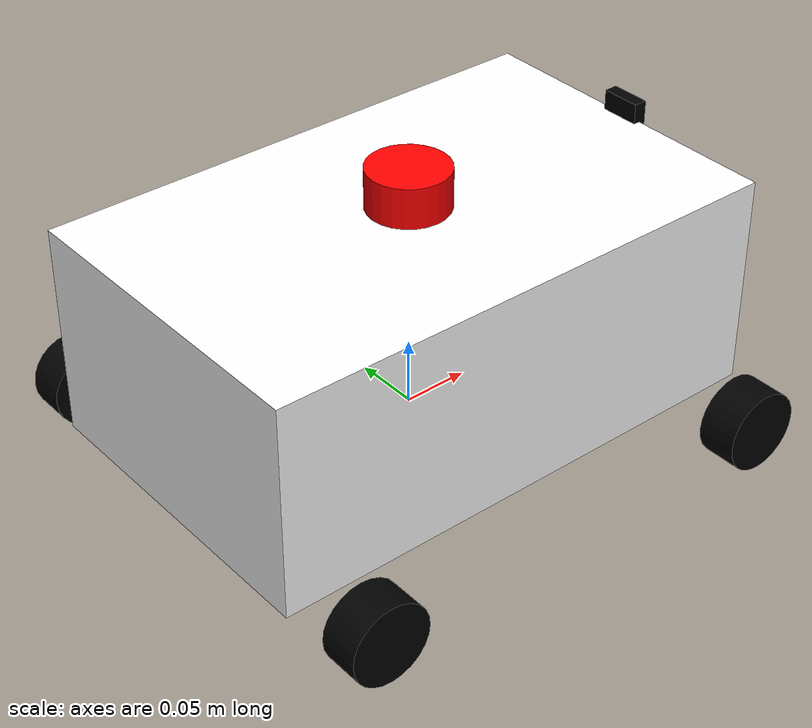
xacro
<?xml version="1.0"?>
<robot xmlns:xacro="http://www.ros.org/wiki/xacro"  name="robot">

    <xacro:include filename="robot_core.xacro" />

    <!-- gazebo include -->
    <xacro:include filename="ros2_control_interface.xacro"/>

    <xacro:include filename="lidar.xacro"/>
    <!-- camera include -->
    <xacro:include filename="camera.xacro"/>

</robot>

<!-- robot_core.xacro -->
<robot xmlns:xacro="http://www.ros.org/wiki/xacro">

    <xacro:include filename="inertial_macros.xacro"/>

    <xacro:property name="chassis_length" value="0.4"/>
    <xacro:property name="chassis_width" value="0.25"/>
    <xacro:property name="chassis_height" value="0.16"/>
    <xacro:property name="chassis_mass" value="1.0"/>
    <xacro:property name="wheel_radius" value="0.03"/>
    <xacro:property name="wheel_thickness" value="0.03"/>
    <xacro:property name="wheel_mass" value="0.05"/>
    <xacro:property name="wheel_offset_x" value="0.165"/>
    <xacro:property name="wheel_offset_y" value="0.17"/>
    <xacro:property name="wheel_offset_z" value="0.01"/>

    <material name="white">
        <color rgba="1 1 1 1" />
    </material>

    <material name="orange">
        <color rgba="1 0.3 0.1 1" />
    </material>

    <material name="blue">
        <color rgba="0.2 0.2 1 1" />
    </material>

    <material name="black">
        <color rgba="0 0 0 1" />
    </material>

    <material name="red">
        <color rgba="1 0 0 1" />
    </material>

<!-- BASE LINK -->

    <link name="base_link">

    </link>

    <joint name="base_footprint_joint" type="fixed">
        <parent link="base_link"/>
        <child link="base_footprint"/>
        <origin xyz="0 0 0" rpy="0 0 0"/>
    </joint>

    <link name="base_footprint">
    </link>

<!-- CHASSIS  LINK-->

    <joint name="chassis_joint" type="fixed">
        <parent link="base_link" />
        <child link="chassis"/>
        <origin xyz="0 0 0"/>
    </joint>

    <link name="chassis">
        <visual>
            <origin xyz="0 0 ${chassis_height/2}"/>
            <geometry>
                <box size="${chassis_length} ${chassis_width} ${chassis_height}"/>
            </geometry>
            <material name="white"/>
        </visual>
        <collision>
            <origin xyz="0 0 ${chassis_height/2}"/>
            <geometry>
                <box size="${chassis_length} ${chassis_width} ${chassis_height}"/>
            </geometry>
        </collision>
        <xacro:inertial_box mass="0.5" x="${chassis_length}" y="${chassis_width}" z="${chassis_height}">
            <origin xyz="0 0 ${chassis_height/2}" rpy="0 0 0"/>
        </xacro:inertial_box>
    </link>

    <gazebo reference="chassis">
        <material>Gazebo/Orange</material>
    </gazebo>

<!-- LEFT FRONT WHEEL -->

<link name="wheel_front_left_link">
  <visual>
    <geometry>
      <cylinder radius="${wheel_radius}" length="${wheel_thickness}"/>
    </geometry>
    <origin xyz="0 0 0" rpy="0 0 0"/> <!-- agar menghadap ke samping -->
    <material name="black">
      <color rgba="0 0 0 1"/>
    </material>
  </visual>
  <collision>
    <geometry>
      <sphere radius="${wheel_radius}"/>
      <origin xyz="0 0 0" rpy="0 0 0"/>
    </geometry>
    <friction>
      <ode>
        <mu>0.5</mu>
        <mu2>0.5</mu2>
        <slip1>0.01</slip1>
        <slip2>0.01</slip2>
      </ode>
    </friction>
  </collision>
  <xacro:inertial_cylinder mass="${wheel_mass}" length="${wheel_thickness}" radius="${wheel_radius}">
    <origin xyz="0 0 0" rpy="0 0 0"/>
  </xacro:inertial_cylinder>
</link>
<gazebo reference="wheel_front_left_link">
    <material>Gazebo/Blue</material>
</gazebo>
<joint name="base_to_wheel_front_left" type="continuous">
  <parent link="base_link"/>
  <child link="wheel_front_left_link"/>
  <origin xyz="${wheel_offset_x} ${wheel_offset_y} 0" rpy="-${pi/2} 0 0"/>
  <axis xyz="0 0 1"/>
</joint>

<!-- kanan-depan -->
<link name="wheel_front_right_link">
  <visual>
    <geometry>
      <cylinder radius="${wheel_radius}" length="${wheel_thickness}"/>
    </geometry>
    <origin xyz="0 0 0" rpy="0 0 0"/>
    <material name="black">
      <color rgba="0 0 0 1"/>
    </material>
  </visual>
  <collision>
    <geometry>
      <sphere radius="${wheel_radius}"/>
      <origin xyz="0 0 0" rpy="0 0 0"/>
    </geometry>
    <friction>
      <ode>
        <mu>0.5</mu>
        <mu2>0.5</mu2>
        <slip1>0.01</slip1>
        <slip2>0.01</slip2>
      </ode>
    </friction>
  </collision>
  <xacro:inertial_cylinder mass="${wheel_mass}" length="${wheel_thickness}" radius="${wheel_radius}">
    <origin xyz="0 0 0" rpy="0 0 0"/>
  </xacro:inertial_cylinder>
</link>
<gazebo reference="wheel_front_right_link">
    <material>Gazebo/Blue</material>
</gazebo>
<joint name="base_to_wheel_front_right" type="continuous">
  <parent link="base_link"/>
  <child link="wheel_front_right_link"/>
  <origin xyz="${wheel_offset_x} ${-wheel_offset_y} 0" rpy="${pi/2} 0 0"/>
  <axis xyz="0 0 -1"/>
</joint>

<!-- kiri-belakang -->
<link name="wheel_back_left_link">
  <visual>
    <geometry>
      <cylinder radius="${wheel_radius}" length="${wheel_thickness}"/>
    </geometry>
    <origin xyz="0 0 0" rpy="0 0 0"/>
    <material name="black">
      <color rgba="0 0 0 1"/>
    </material>
  </visual>
  <collision>
    <geometry>
      <sphere radius="${wheel_radius}"/>
      <origin xyz="0 0 0" rpy="0 0 0"/>
    </geometry>
    <friction>
      <ode>
        <mu>0.5</mu>
        <mu2>0.5</mu2>
        <slip1>0.01</slip1>
        <slip2>0.01</slip2>
      </ode>
    </friction>
  </collision>
  <xacro:inertial_cylinder mass="${wheel_mass}" length="${wheel_thickness}" radius="${wheel_radius}">
    <origin xyz="0 0 0" rpy="0 0 0"/>
  </xacro:inertial_cylinder>
</link>
<gazebo reference="wheel_back_left_link">
    <material>Gazebo/Blue</material>
</gazebo>
<joint name="base_to_wheel_back_left" type="continuous">
  <parent link="base_link"/>
  <child link="wheel_back_left_link"/>
  <origin xyz="${-wheel_offset_x} ${wheel_offset_y} 0" rpy="-${pi/2} 0 0"/>
  <axis xyz="0 0 1"/>
</joint>

<!-- kanan-belakang -->
<link name="wheel_back_right_link">
  <visual>
    <geometry>
      <cylinder radius="${wheel_radius}" length="${wheel_thickness}"/>
    </geometry>
    <origin xyz="0 0 0" rpy="0 0 0"/>
    <material name="black">
      <color rgba="0 0 0 1"/>
    </material>
  </visual>
  <collision>
    <geometry>
      <sphere radius="${wheel_radius}"/>
      <origin xyz="0 0 0" rpy="0 0 0"/>
    </geometry>
    <friction>
      <ode>
        <mu>0.5</mu>
        <mu2>0.5</mu2>
        <slip1>0.01</slip1>
        <slip2>0.01</slip2>
      </ode>
    </friction>
  </collision>
  <xacro:inertial_cylinder mass="${wheel_mass}" length="${wheel_thickness}" radius="${wheel_radius}">
    <origin xyz="0 0 0" rpy="0 0 0"/>
  </xacro:inertial_cylinder>
</link>
<gazebo reference="wheel_back_right_link">
    <material>Gazebo/Blue</material>
</gazebo>
<joint name="base_to_wheel_back_right" type="continuous">
  <parent link="base_link"/>
  <child link="wheel_back_right_link"/>
  <origin xyz="${-wheel_offset_x} ${-wheel_offset_y} 0" rpy="${pi/2} 0 0"/>
  <axis xyz="0 0 -1"/>
</joint>

</robot>

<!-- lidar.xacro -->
<robot xmlns:xacro="http://www.ros.org/wiki/xacro" >

    <joint name="laser_joint" type="fixed">
        <parent link="chassis"/>
        <child link="laser_frame"/>
        <origin xyz="0 0 0.175" rpy="0 0 0"/>
    </joint>

    <link name="laser_frame">
        <visual>
            <geometry>
            <cylinder radius="0.03" length="0.03"/>
            </geometry>
            <origin xyz="0 0 0" rpy="0 0 0"/>
            <material name="red">
            </material>
        </visual>
        <collision>
            <geometry>
            <cylinder radius="0.03" length="0.03"/>
            <origin xyz="0 0 0" rpy="0 0 0"/>
            </geometry>
        </collision>
        <xacro:inertial_cylinder mass="0.1" length="0.03" radius="0.03">
            <origin xyz="0 0 0" rpy="0 0 0"/>
        </xacro:inertial_cylinder>
    </link>

    <gazebo reference="laser_frame">
        <material>Gazebo/Black</material>

        <sensor name="laser" type="ray">
            <pose> 0 0 0 0 0 0 </pose>
            <visualize>true</visualize>
            <update_rate>10</update_rate>
            <ray>
                <scan>
                    <horizontal>
                        <samples>360</samples>
                        <min_angle>-3.14</min_angle>
                        <max_angle>3.14</max_angle>
                    </horizontal>
                </scan>
                <range>
                    <min>0.3</min>
                    <max>12</max>
                </range>
            </ray>
            <plugin name="laser_controller" filename="libgazebo_ros_ray_sensor.so">
                <ros>
                    <argument>--ros-args --remap ~/out:=scan</argument>
                </ros>
                <output_type>sensor_msgs/LaserScan</output_type>
                <frame_name>laser_frame</frame_name>
            </plugin>
        </sensor>
    </gazebo>

</robot>

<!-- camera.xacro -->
<robot xmlns:xacro="http://www.ros.org/wiki/xacro" >

    <joint name="camera_joint" type="fixed">
        <parent link="chassis"/>
        <child link="camera_link"/>
        <origin xyz="0.2 0 0.16" rpy="0 0 0"/>
    </joint>

    <link name="camera_link">
        <visual>
            <geometry>
                <box size="0.010 0.03 0.03"/>
            </geometry>
            <material name="black"/>
        </visual>
        <visual>
            <origin xyz="0 0 -0.05"/>
            <geometry>
                <cylinder radius="0.002" length="0.1"/>
            </geometry>
            <material name="black"/>
        </visual>
    </link>

    <joint name="camera_optical_joint" type="fixed">
        <parent link="camera_link"/>
        <child link="camera_link_optical"/>
        <origin xyz="0 0 0" rpy="${-pi/2} 0 ${-pi/2}"/>
    </joint>

    <link name="camera_link_optical"></link>

    <gazebo reference="camera_link">
        <material>Gazebo/Black</material>

        <sensor name="camera" type="camera">
            <pose> 0 0 0 0 0 0 </pose>
            <visualize>true</visualize>
            <update_rate>10</update_rate>
            <camera>
                <horizontal_fov>1.089</horizontal_fov>
                <image>
                    <format>R8G8B8</format>
                    <width>640</width>
                    <height>480</height>
                </image>
                <clip>
                    <near>0.05</near>
                    <far>8.0</far>
                </clip>
            </camera>
            <plugin name="camera_controller" filename="libgazebo_ros_camera.so">
                <frame_name>camera_link_optical</frame_name>
            </plugin>
        </sensor>
    </gazebo>

</robot>
